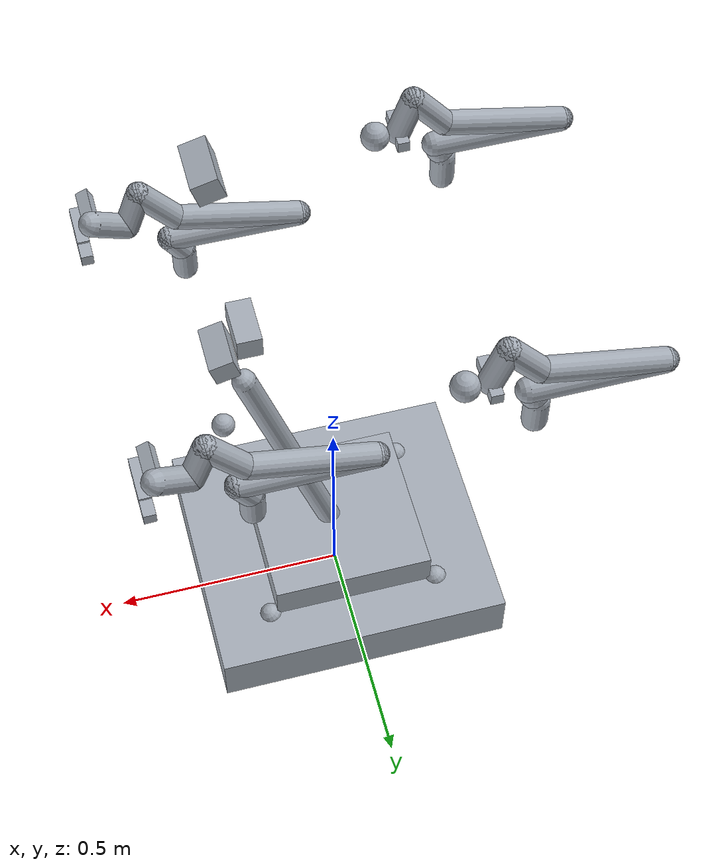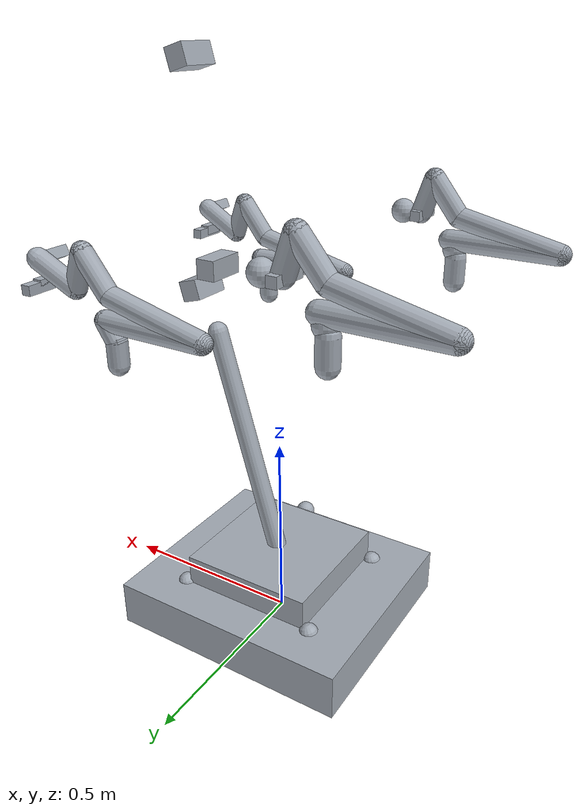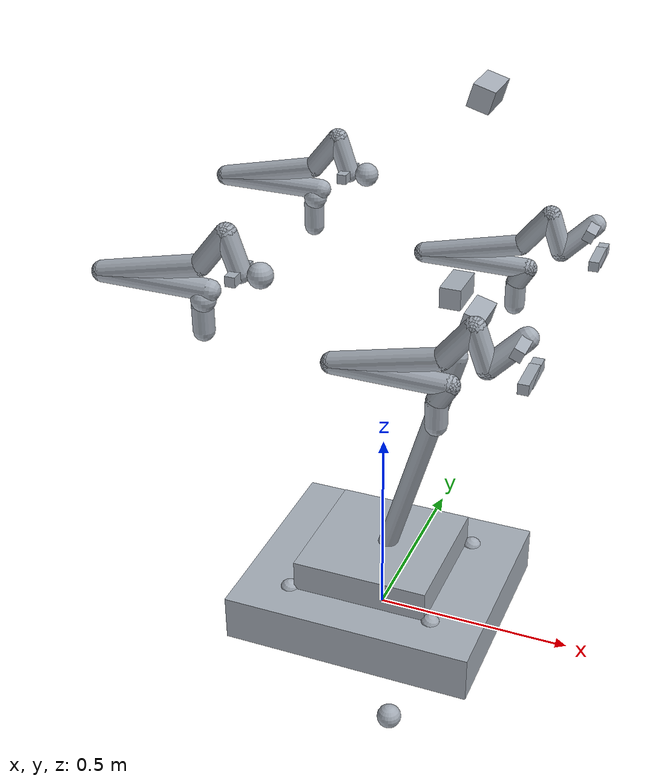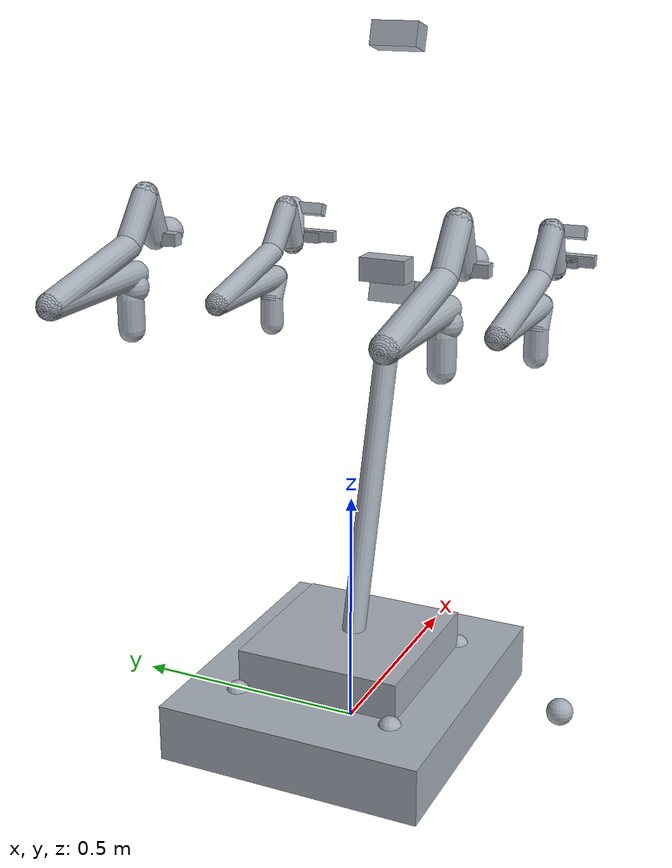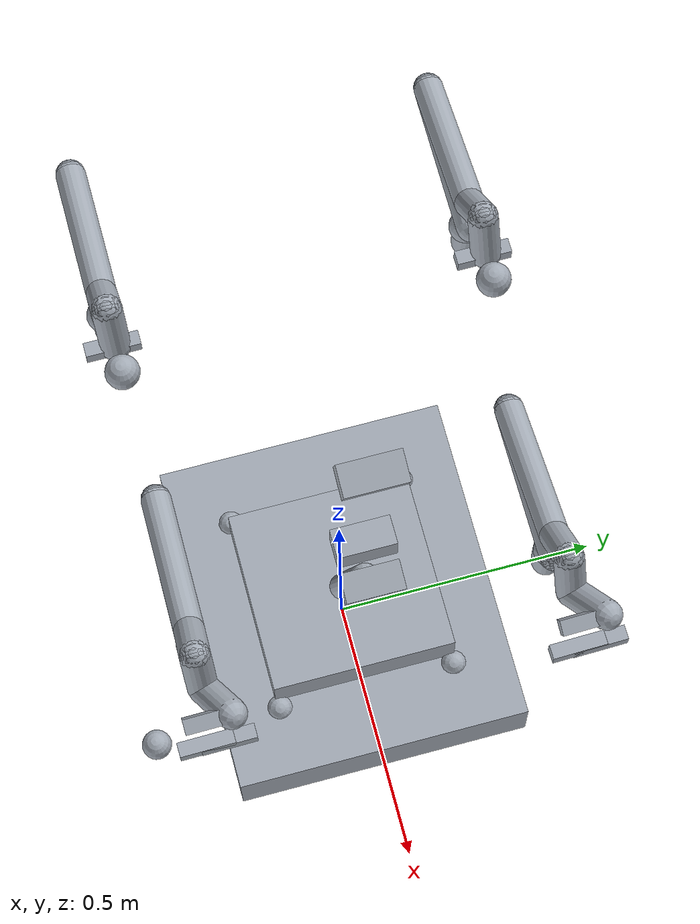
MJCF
<mujoco model="arx5_description_no_mesh">
  <!-- Mesh-free conversion of arx5_description_isaac.urdf; generated by convert_urdf_to_nomesh_mjcf.py. -->
  <compiler angle="radian" autolimits="true" balanceinertia="true" />
  <option integrator="implicitfast" cone="elliptic" impratio="10" />
  <default>
    <joint damping="0.1" armature="0.01" />
    <geom rgba="0.65 0.68 0.72 1" friction="0.8 0.1 0.1" condim="3" />
  </default>
  <worldbody>
    <light name="top" pos="0 0 2" mode="trackcom" />
    <body name="footprint">
      <geom type="box" size="0.32 0.28 0.06" pos="0 0 0.06" name="footprint_geom" />
      <body name="base_link" pos="0 0 0.15" quat="1 0 0 0">
        <geom type="box" size="0.175 0.05 0.175" pos="0 0 0" quat="0.707388269 0.706825181 0 0" name="base_link_geom" />
        <body name="inertial_link" pos="0 0 0" quat="1 0 0 0">
          <inertial pos="0.015 0.0231316650320557 0" quat="1 0 0 0" mass="132.389849" diaginertia="0.185196123 0.364893736 0.223868522" />
          <geom type="sphere" size="0.02875" pos="0.015 0.023131665 0" name="inertial_link_geom" />
        </body>
        <body name="right_wheel_link" pos="0 -0.17 -0.082" quat="1 0 0 0">
          <inertial pos="0 0 0" quat="1 0 0 0" mass="6" diaginertia="0.7171 0.1361 0.7171" />
          <joint name="right_wheel" type="hinge" axis="0 1 0" />
          <geom type="cylinder" size="0.05 0.025" pos="0 0 0" quat="0.707388269 0.706825181 0 0" name="right_wheel_link_geom" />
        </body>
        <body name="left_wheel_link" pos="0 0.17 -0.082" quat="1 0 0 0">
          <inertial pos="0 0 0" quat="1 0 0 0" mass="6" diaginertia="0.7171 0.1361 0.7171" />
          <joint name="left_wheel" type="hinge" axis="0 1 0" />
          <geom type="cylinder" size="0.05 0.025" pos="0 0 0" quat="0.707388269 0.706825181 0 0" name="left_wheel_link_geom" />
        </body>
        <body name="fl_castor_link" pos="0.19 0.17 -0.038" quat="0.707388269 -0.706825181 0 0">
          <inertial pos="0 0 0" quat="1 0 0 0" mass="1" diaginertia="0.7171 0.1361 0.7171" />
          <joint name="fl_castor_wheel" type="hinge" axis="0 1 0" />
          <geom type="capsule" size="0.025" fromto="0 0 0 -0.0218084 0.077 0" name="fl_castor_link_geom" />
          <body name="fl_wheel_link" pos="-0.0218084 0.077 0" quat="1 0 0 0">
            <inertial pos="0 0 0" quat="1 0 0 0" mass="1" diaginertia="0.3131 0.3131 0.1361" />
            <joint name="fl_wheel" type="hinge" axis="0 0 1" />
            <geom type="cylinder" size="0.025 0.0125" pos="0 0 0" quat="1 0 0 0" name="fl_wheel_link_geom" />
          </body>
        </body>
        <body name="fr_castor_link" pos="0.18955 -0.17 -0.0380886" quat="0.707388269 -0.706825181 0 0">
          <inertial pos="0 0 0" quat="1 0 0 0" mass="1" diaginertia="0.7171 0.1361 0.7171" />
          <joint name="fr_castor_wheel" type="hinge" axis="0 1 0" />
          <geom type="capsule" size="0.025" fromto="0 0 0 -0.0218084 0.077 0" name="fr_castor_link_geom" />
          <body name="fr_wheel_link" pos="-0.0218084 0.077 0" quat="1 0 0 0">
            <inertial pos="0 0 0" quat="1 0 0 0" mass="1" diaginertia="0.3131 0.3131 0.1361" />
            <joint name="fr_wheel" type="hinge" axis="0 0 1" />
            <geom type="cylinder" size="0.025 0.0125" pos="0 0 0" quat="1 0 0 0" name="fr_wheel_link_geom" />
          </body>
        </body>
        <body name="rr_castor_link" pos="-0.18955 -0.17 -0.0380886" quat="0.707388269 -0.706825181 0 0">
          <inertial pos="0 0 0" quat="1 0 0 0" mass="1" diaginertia="0.7171 0.1361 0.7171" />
          <joint name="rr_castor_wheel" type="hinge" axis="0 1 0" />
          <geom type="capsule" size="0.025" fromto="0 0 0 -0.0218084 0.077 0" name="rr_castor_link_geom" />
          <body name="rr_wheel_link" pos="-0.0218084 0.077 0" quat="1 0 0 0">
            <inertial pos="0 0 0" quat="1 0 0 0" mass="1" diaginertia="0.3131 0.3131 0.1361" />
            <joint name="rr_wheel" type="hinge" axis="0 0 1" />
            <geom type="cylinder" size="0.025 0.0125" pos="0 0 0" quat="1 0 0 0" name="rr_wheel_link_geom" />
          </body>
        </body>
        <body name="rl_castor_link" pos="-0.18955 0.17 -0.0380886" quat="0.707388269 -0.706825181 0 0">
          <inertial pos="0 0 0" quat="1 0 0 0" mass="1" diaginertia="0.7171 0.1361 0.7171" />
          <joint name="rl_castor_wheel" type="hinge" axis="0 1 0" />
          <geom type="capsule" size="0.025" fromto="0 0 0 -0.0218084 0.077 0" name="rl_castor_link_geom" />
          <body name="rl_wheel_link" pos="-0.0218084 0.077 0" quat="1 0 0 0">
            <inertial pos="0 0 0" quat="1 0 0 0" mass="1" diaginertia="0.3131 0.3131 0.1361" />
            <joint name="rl_wheel" type="hinge" axis="0 0 1" />
            <geom type="cylinder" size="0.025 0.0125" pos="0 0 0" quat="1 0 0 0" name="rl_wheel_link_geom" />
          </body>
        </body>
      </body>
      <body name="box1_Link" pos="0 0 0.15" quat="1 0 0 0">
        <inertial pos="-0.17227 -0.0012276 0.023432" quat="1 0 0 0" mass="0.00014994" diaginertia="0.012264 0.0045226 0.016558" />
        <geom type="capsule" size="0.025" fromto="0 0 0 0.18 0 0.626" name="box1_Link_geom" />
        <body name="box2_Link" pos="0.158 -0.385 -0.135" quat="1 0 0 0">
          <inertial pos="0.015107 -0.027922 0.00013672" quat="1 0 0 0" mass="3.736" diaginertia="0.097545 0.045841 0.084773" />
          <geom type="sphere" size="0.02875" pos="0.015107 -0.027922 0.00013672" name="box2_Link_geom" />
        </body>
        <body name="camera_base_link" pos="0.18 0 0.626" quat="1 0 0 0">
          <inertial pos="-0.00862442289199344 -5.31672329634469E-08 0.170092831004467" quat="1 0 0 0" mass="0.336269569" diaginertia="0.00580628297 0.00582602201 0.000186894283" />
          <geom type="box" size="0.025 0.05 0.025" pos="-0.00862442289 -5.3167233e-08 0.170092831" name="camera_base_link_geom" />
          <body name="camera_link1" pos="0.071198 0 0.10384" quat="0.990947706 0 0.134248442 0">
            <inertial pos="-0.0292387906463559 0.000126439620513119 -0.000724950892729725" quat="1 0 0 0" mass="0.0877001598" diaginertia="7.77343249e-05 9.73521514e-06 7.74948757e-05" />
            <geom type="box" size="0.025 0.05 0.025" pos="-0.0292387906 0.000126439621 -0.000724950893" name="camera_link1_geom" />
            <body name="camera_link2" pos="-0.14 0 0.5" quat="0.999983875 0 0.00567896947 0">
              <inertial pos="-0.0292307474530399 0.000126438461566014 -0.000753459207498031" quat="1 0 0 0" mass="0.0877001605" diaginertia="7.77338962e-05 9.73521617e-06 7.74953085e-05" />
              <geom type="box" size="0.025 0.05 0.025" pos="-0.0292307475 0.000126438462 -0.000753459207" name="camera_link2_geom" />
            </body>
          </body>
        </body>
      </body>
      <body name="fl_base_link" pos="0.2305 0.297 0.782" quat="0.99995 0 0 0.00999983333">
        <inertial pos="-3.77960552443097E-05 6.79413834922362E-05 0.0272675975957773" quat="1 0 0 0" mass="0.155112527" diaginertia="7.60347374e-05 7.6417639e-05 6.94914158e-05" />
        <geom type="capsule" size="0.025" fromto="0 0 0 0 0 0.058" name="fl_base_link_geom" />
        <body name="fl_link1" pos="0 0 0.058" quat="1 0 0 0">
          <inertial pos="0.00625345254733769 -0.024776724575416 0.0152204909116542" quat="1 0 0 0" mass="0.0216291264" diaginertia="1.15756471e-05 9.5460586e-06 1.06781021e-05" />
          <joint name="fl_joint1" type="hinge" axis="0 0 1" range="-10 10" />
          <geom type="capsule" size="0.025" fromto="0 0 0 0.025013 0.00060169 0.042" name="fl_link1_geom" />
          <body name="fl_link2" pos="0.025013 0.00060169 0.042" quat="1 0 0 0">
            <inertial pos="-0.0751817740450955 3.45134309138919E-06 -4.55690287344823E-05" quat="1 0 0 0" mass="0.317040634" diaginertia="0.000148622979 0.000646291918 0.000613128042" />
            <joint name="fl_joint2" type="hinge" axis="0 1 0" range="-10 10" />
            <geom type="capsule" size="0.025" fromto="0 0 0 -0.26396 0.0044548 0" name="fl_link2_geom" />
            <body name="fl_link3" pos="-0.26396 0.0044548 0" quat="-3.67308862e-06 -0.999968288 0.00796391581 2.92530962e-08">
              <inertial pos="0.0958977122336034 -8.54798924280289E-05 -0.0389029227802006" quat="1 0 0 0" mass="0.475179901" diaginertia="0.000245797731 0.000848596966 0.000732908486" />
              <joint name="fl_joint3" type="hinge" axis="0 1 0" range="-10 10" />
              <geom type="capsule" size="0.025" fromto="0 0 0 0.246 -0.00025 -0.06" name="fl_link3_geom" />
              <body name="fl_link4" pos="0.246 -0.00025 -0.06" quat="1 0 0 0">
                <inertial pos="0.0591385266744759 0.00278044811499105 -0.0552291926495377" quat="1 0 0 0" mass="0.138133634" diaginertia="5.68129318e-05 5.56751697e-05 6.42957251e-05" />
                <joint name="fl_joint4" type="hinge" axis="0 1 0" range="-10 10" />
                <geom type="capsule" size="0.025" fromto="0 0 0 0.06775 0.0015 -0.0855" name="fl_link4_geom" />
                <body name="fl_link5" pos="0.06775 0.0015 -0.0855" quat="0.999968288 0 0 -0.00796391581">
                  <inertial pos="0.00870303426445659 -2.87406901246252E-05 0.0817957433312705" quat="1 0 0 0" mass="0.126741778" diaginertia="5.28702264e-05 4.14245047e-05 4.4626556e-05" />
                  <joint name="fl_joint5" type="hinge" axis="0 0 1" range="-10 10" />
                  <geom type="capsule" size="0.025" fromto="0 0 0 0.03095 0 0.0855" name="fl_link5_geom" />
                  <body name="fl_link6" pos="0.03095 0 0.0855" quat="-3.6732051e-06 -1 -0 0">
                    <inertial pos="0.038317562848284 -4.45000434657139E-05 0.00355875192843721" quat="1 0 0 0" mass="0.142880101" diaginertia="9.84190386e-05 3.95328646e-05 8.47115626e-05" />
                    <joint name="fl_joint6" type="hinge" axis="1 0 0" range="-10 10" />
                    <geom type="capsule" size="0.025" fromto="0 0 0 0.07 0.032 0.065" name="fl_link6_geom" />
                    <body name="fl_gripper_center" pos="0.08457 -1.5e-06 -0.000103515" quat="6.27473282e-06 0.707539403 -6.26705715e-06 0.706673894">
                      <site name="fl_gripper_center" type="sphere" size="0.005" group="5" rgba="0.9 0.9 0.9 1" />
                    </body>
                    <body name="left_camera" pos="0.07 0.032 0.065" quat="0.980066578 0 0.198669331 0">
                      <inertial pos="0 0 0" quat="1 0 0 0" mass="0.1" diaginertia="0.001 0.001 0.001" />
                      <geom type="box" size="0.0125 0.045 0.0125" pos="0 -0.032 0" quat="1 0 0 0" name="left_camera_geom" />
                    </body>
                    <body name="fl_link7" pos="0.08457 0.024493 -0.00010349" quat="1 0 0 0">
                      <inertial pos="0.00626222055030923 -0.00713411663149576 -0.00289898514345116" quat="1 0 0 0" mass="0.0264779586" diaginertia="8.79642527e-06 1.48519274e-05 1.11141426e-05" />
                      <joint name="fl_joint7" type="slide" axis="0 1 0" range="0 0.04765" />
                      <geom type="box" size="0.012 0.045 0.012" pos="0.00626222055 -0.00713411663 -0.00289898514" name="fl_link7_geom" />
                    </body>
                    <body name="fl_link8" pos="0.08457 -0.024496 -0.00010354" quat="1 0 0 0">
                      <inertial pos="0.00626222057480438 0.00713411644936678 0.00145300478837504" quat="1 0 0 0" mass="0.0264779581" diaginertia="9.01311523e-06 1.50686174e-05 1.11141426e-05" />
                      <joint name="fl_joint8" type="slide" axis="0 -1 0" range="0 0.04765" />
                      <geom type="box" size="0.012 0.045 0.012" pos="0.00626222057 0.00713411645 0.00145300479" name="fl_link8_geom" />
                    </body>
                  </body>
                </body>
              </body>
            </body>
          </body>
        </body>
      </body>
      <body name="fr_base_link" pos="0.2315 -0.3063 0.781" quat="0.9999875 0 0 0.00499997917">
        <inertial pos="-3.77960552443097E-05 6.79413834922362E-05 0.0272675975957773" quat="1 0 0 0" mass="0.155112527" diaginertia="7.60347374e-05 7.6417639e-05 6.94914158e-05" />
        <geom type="capsule" size="0.025" fromto="0 0 0 0 0 0.058" name="fr_base_link_geom" />
        <body name="fr_link1" pos="0 0 0.058" quat="1 0 0 0">
          <inertial pos="0.00625345254733769 -0.024776724575416 0.0152204909116542" quat="1 0 0 0" mass="0.0216291264" diaginertia="1.15756471e-05 9.5460586e-06 1.06781021e-05" />
          <joint name="fr_joint1" type="hinge" axis="0 0 1" range="-10 10" />
          <geom type="capsule" size="0.025" fromto="0 0 0 0.025013 0.00060169 0.042" name="fr_link1_geom" />
          <body name="fr_link2" pos="0.025013 0.00060169 0.042" quat="1 0 0 0">
            <inertial pos="-0.0751817740450955 3.45134309138919E-06 -4.55690287344823E-05" quat="1 0 0 0" mass="0.317040634" diaginertia="0.000148622979 0.000646291918 0.000613128042" />
            <joint name="fr_joint2" type="hinge" axis="0 1 0" range="-10 10" />
            <geom type="capsule" size="0.025" fromto="0 0 0 -0.26396 0.0044548 0" name="fr_link2_geom" />
            <body name="fr_link3" pos="-0.26396 0.0044548 0" quat="-3.67308862e-06 -0.999968288 0.00796391581 2.92530962e-08">
              <inertial pos="0.0958977122336034 -8.54798924280289E-05 -0.0389029227802006" quat="1 0 0 0" mass="0.475179901" diaginertia="0.000245797731 0.000848596966 0.000732908486" />
              <joint name="fr_joint3" type="hinge" axis="0 1 0" range="-10 10" />
              <geom type="capsule" size="0.025" fromto="0 0 0 0.246 -0.00025 -0.06" name="fr_link3_geom" />
              <body name="fr_link4" pos="0.246 -0.00025 -0.06" quat="1 0 0 0">
                <inertial pos="0.0591385266744759 0.00278044811499105 -0.0552291926495377" quat="1 0 0 0" mass="0.138133634" diaginertia="5.68129318e-05 5.56751697e-05 6.42957251e-05" />
                <joint name="fr_joint4" type="hinge" axis="0 1 0" range="-10 10" />
                <geom type="capsule" size="0.025" fromto="0 0 0 0.06775 0.0015 -0.0855" name="fr_link4_geom" />
                <body name="fr_link5" pos="0.06775 0.0015 -0.0855" quat="0.999968288 0 0 -0.00796391581">
                  <inertial pos="0.00870303426445659 -2.87406901246252E-05 0.0817957433312705" quat="1 0 0 0" mass="0.126741778" diaginertia="5.28702264e-05 4.14245047e-05 4.4626556e-05" />
                  <joint name="fr_joint5" type="hinge" axis="0 0 1" range="-10 10" />
                  <geom type="capsule" size="0.025" fromto="0 0 0 0.03095 0 0.0855" name="fr_link5_geom" />
                  <body name="fr_link6" pos="0.03095 0 0.0855" quat="-3.6732051e-06 -1 -0 0">
                    <inertial pos="0.038317562848284 -4.45000434657139E-05 0.00355875192843721" quat="1 0 0 0" mass="0.142880101" diaginertia="9.84190386e-05 3.95328646e-05 8.47115626e-05" />
                    <joint name="fr_joint6" type="hinge" axis="1 0 0" range="-10 10" />
                    <geom type="capsule" size="0.025" fromto="0 0 0 0.07 0.032 0.065" name="fr_link6_geom" />
                    <body name="fr_gripper_center" pos="0.08457 -1.5e-06 -0.000103515" quat="6.27473282e-06 0.707539403 -6.26705715e-06 0.706673894">
                      <site name="fr_gripper_center" type="sphere" size="0.005" group="5" rgba="0.9 0.9 0.9 1" />
                    </body>
                    <body name="right_camera" pos="0.07 0.032 0.065" quat="0.980066578 0 0.198669331 0">
                      <inertial pos="0 0 0" quat="1 0 0 0" mass="0.1" diaginertia="0.001 0.001 0.001" />
                      <geom type="box" size="0.0125 0.045 0.0125" pos="0 -0.032 0" quat="1 0 0 0" name="right_camera_geom" />
                    </body>
                    <body name="fr_link7" pos="0.08457 0.024493 -0.00010349" quat="1 0 0 0">
                      <inertial pos="0.00626222055030923 -0.00713411663149576 -0.00289898514345116" quat="1 0 0 0" mass="0.0264779586" diaginertia="8.79642527e-06 1.48519274e-05 1.11141426e-05" />
                      <joint name="fr_joint7" type="slide" axis="0 1 0" range="0 0.04765" />
                      <geom type="box" size="0.012 0.045 0.012" pos="0.00626222055 -0.00713411663 -0.00289898514" name="fr_link7_geom" />
                    </body>
                    <body name="fr_link8" pos="0.08457 -0.024496 -0.00010354" quat="1 0 0 0">
                      <inertial pos="0.00626222057480438 0.00713411644936678 0.00145300478837504" quat="1 0 0 0" mass="0.0264779581" diaginertia="9.01311523e-06 1.50686174e-05 1.11141426e-05" />
                      <joint name="fr_joint8" type="slide" axis="0 -1 0" range="0 0.04765" />
                      <geom type="box" size="0.012 0.045 0.012" pos="0.00626222057 0.00713411645 0.00145300479" name="fr_link8_geom" />
                    </body>
                  </body>
                </body>
              </body>
            </body>
          </body>
        </body>
      </body>
      <body name="lr_base_link" pos="-0.309 0.307 0.903" quat="1 0 0 0">
        <inertial pos="-2.9972E-05 3.056E-05 0.027301" quat="1 0 0 0" mass="0.44038" diaginertia="0.00017 0.00018 0.00016" />
        <geom type="capsule" size="0.025" fromto="0 0 0 0 0 0.0603" name="lr_base_link_geom" />
        <body name="lr_link1" pos="0 0 0.0603" quat="1 0 0 0">
          <inertial pos="0.00609525411893452 -0.00429681977500749 0.0179590247477389" quat="1 0 0 0" mass="0.0608351105" diaginertia="8e-05 3e-05 7e-05" />
          <joint name="lr_joint1" type="hinge" axis="0 0 1" range="-10 10" />
          <geom type="sphere" size="0.02875" pos="0.00609525412 -0.00429681978 0.0179590247" name="lr_link1_geom" />
          <body name="lr_link2" pos="0.02 0 0.0402" quat="1 0 0 0">
            <inertial pos="-0.132382037190567 0.00220380675553821 0.000111790164679923" quat="1 0 0 0" mass="1.0733279" diaginertia="0.0005 0.01596 0.01602" />
            <joint name="lr_joint2" type="hinge" axis="0 1 0" range="-10 10" />
            <geom type="capsule" size="0.025" fromto="0 0 0 -0.264 0 0" name="lr_link2_geom" />
            <body name="lr_link3" pos="-0.264 0 0" quat="-3.6732051e-06 -1 -0 0">
              <inertial pos="0.187203287369961 -0.000305676361444925 -0.0514832866415513" quat="1 0 0 0" mass="0.499404738" diaginertia="0.00033 0.00387 0.00383" />
              <joint name="lr_joint3" type="hinge" axis="0 1 0" range="-10 10" />
              <geom type="capsule" size="0.025" fromto="0 0 0 0.245 0 -0.056" name="lr_link3_geom" />
              <body name="lr_link4" pos="0.245 0 -0.056" quat="1 0 0 0">
                <inertial pos="0.0388884702662706 0.00295168681334743 -0.0353282735009622" quat="1 0 0 0" mass="0.0809712553" diaginertia="0.00013 0.00016 0.0001" />
                <joint name="lr_joint4" type="hinge" axis="0 1 0" range="-10 10" />
                <geom type="capsule" size="0.025" fromto="0 0 0 0.06575 -0.001 -0.0825" name="lr_link4_geom" />
                <body name="lr_link5" pos="0.06575 -0.001 -0.0825" quat="1 0 0 0">
                  <inertial pos="0.00289956909960302 3.15826689885766E-05 0.0526188859211408" quat="1 0 0 0" mass="0.602357399" diaginertia="0.00072 0.00069 0.00021" />
                  <joint name="lr_joint5" type="hinge" axis="0 0 1" range="-10 10" />
                  <geom type="capsule" size="0.025" fromto="0 0 0 0.02845 0 0.0825" name="lr_link5_geom" />
                  <body name="lr_link6" pos="0.02845 0 0.0825" quat="-3.6732051e-06 -1 -0 0">
                    <inertial pos="0.0471798400661976 0.000102970421835668 -0.000138510949393961" quat="1 0 0 0" mass="0.462244961" diaginertia="0.00068 0.00036 0.00091" />
                    <joint name="lr_joint6" type="hinge" axis="1 0 0" range="-10 10" />
                    <geom type="sphere" size="0.02875" pos="0.0471798401 0.000102970422 -0.000138510949" name="lr_link6_geom" />
                    <body name="lr_link7" pos="0 0 0" quat="1 0 0 0">
                      <inertial pos="-0.000327642774520215 -0.00482005374028087 -0.00167540868720402" quat="1 0 0 0" mass="0.048401666" diaginertia="1e-05 2e-05 2e-05" />
                      <geom type="box" size="0.012 0.045 0.012" pos="-0.000327642775 -0.00482005374 -0.00167540869" name="lr_link7_geom" />
                    </body>
                  </body>
                </body>
              </body>
            </body>
          </body>
        </body>
      </body>
      <body name="rr_base_link" pos="-0.309 -0.307 0.903" quat="1 0 0 0">
        <inertial pos="-2.9972E-05 3.056E-05 0.027301" quat="1 0 0 0" mass="0.44038" diaginertia="0.00017 0.00018 0.00016" />
        <geom type="capsule" size="0.025" fromto="0 0 0 0 0 0.0603" name="rr_base_link_geom" />
        <body name="rr_link1" pos="0 0 0.0603" quat="1 0 0 0">
          <inertial pos="0.00609525411893452 -0.00429681977500749 0.0179590247477389" quat="1 0 0 0" mass="0.0608351105" diaginertia="8e-05 3e-05 7e-05" />
          <joint name="rr_joint1" type="hinge" axis="0 0 1" range="-10 10" />
          <geom type="sphere" size="0.02875" pos="0.00609525412 -0.00429681978 0.0179590247" name="rr_link1_geom" />
          <body name="rr_link2" pos="0.02 0 0.0402" quat="1 0 0 0">
            <inertial pos="-0.132382037190567 0.00220380675553821 0.000111790164679923" quat="1 0 0 0" mass="1.0733279" diaginertia="0.0005 0.01596 0.01602" />
            <joint name="rr_joint2" type="hinge" axis="0 1 0" range="-10 10" />
            <geom type="capsule" size="0.025" fromto="0 0 0 -0.264 0 0" name="rr_link2_geom" />
            <body name="rr_link3" pos="-0.264 0 0" quat="-3.6732051e-06 -1 -0 0">
              <inertial pos="0.187203287369961 -0.000305676361444925 -0.0514832866415513" quat="1 0 0 0" mass="0.499404738" diaginertia="0.00033 0.00387 0.00383" />
              <joint name="rr_joint3" type="hinge" axis="0 1 0" range="-10 10" />
              <geom type="capsule" size="0.025" fromto="0 0 0 0.245 0 -0.056" name="rr_link3_geom" />
              <body name="rr_link4" pos="0.245 0 -0.056" quat="1 0 0 0">
                <inertial pos="0.0388884702662706 0.00295168681334743 -0.0353282735009622" quat="1 0 0 0" mass="0.0809712553" diaginertia="0.00013 0.00016 0.0001" />
                <joint name="rr_joint4" type="hinge" axis="0 1 0" range="-10 10" />
                <geom type="capsule" size="0.025" fromto="0 0 0 0.06575 -0.001 -0.0825" name="rr_link4_geom" />
                <body name="rr_link5" pos="0.06575 -0.001 -0.0825" quat="1 0 0 0">
                  <inertial pos="0.00289956909960302 3.15826689885766E-05 0.0526188859211408" quat="1 0 0 0" mass="0.602357399" diaginertia="0.00072 0.00069 0.00021" />
                  <joint name="rr_joint5" type="hinge" axis="0 0 1" range="-10 10" />
                  <geom type="capsule" size="0.025" fromto="0 0 0 0.02845 0 0.0825" name="rr_link5_geom" />
                  <body name="rr_link6" pos="0.02845 0 0.0825" quat="-3.6732051e-06 -1 -0 0">
                    <inertial pos="0.0471798400661976 0.000102970421835668 -0.000138510949393961" quat="1 0 0 0" mass="0.462244961" diaginertia="0.00068 0.00036 0.00091" />
                    <joint name="rr_joint6" type="hinge" axis="1 0 0" range="-10 10" />
                    <geom type="sphere" size="0.02875" pos="0.0471798401 0.000102970422 -0.000138510949" name="rr_link6_geom" />
                    <body name="rr_link7" pos="0 0 0" quat="1 0 0 0">
                      <inertial pos="-0.000327642774520215 -0.00482005374028087 -0.00167540868720402" quat="1 0 0 0" mass="0.048401666" diaginertia="1e-05 2e-05 2e-05" />
                      <geom type="box" size="0.012 0.045 0.012" pos="-0.000327642775 -0.00482005374 -0.00167540869" name="rr_link7_geom" />
                    </body>
                  </body>
                </body>
              </body>
            </body>
          </body>
        </body>
      </body>
    </body>
  </worldbody>
  <actuator>
    <position name="right_wheel_actuator" joint="right_wheel" kp="200" forcerange="-100 100" />
    <position name="left_wheel_actuator" joint="left_wheel" kp="200" forcerange="-100 100" />
    <position name="fl_castor_wheel_actuator" joint="fl_castor_wheel" kp="200" forcerange="-100 100" />
    <position name="fl_wheel_actuator" joint="fl_wheel" kp="200" forcerange="-100 100" />
    <position name="fr_castor_wheel_actuator" joint="fr_castor_wheel" kp="200" forcerange="-100 100" />
    <position name="fr_wheel_actuator" joint="fr_wheel" kp="200" forcerange="-100 100" />
    <position name="rr_castor_wheel_actuator" joint="rr_castor_wheel" kp="200" forcerange="-100 100" />
    <position name="rr_wheel_actuator" joint="rr_wheel" kp="200" forcerange="-100 100" />
    <position name="rl_castor_wheel_actuator" joint="rl_castor_wheel" kp="200" forcerange="-100 100" />
    <position name="rl_wheel_actuator" joint="rl_wheel" kp="200" forcerange="-100 100" />
    <position name="fl_joint1_actuator" joint="fl_joint1" kp="200" forcerange="-100 100" ctrlrange="-10 10" />
    <position name="fl_joint2_actuator" joint="fl_joint2" kp="200" forcerange="-100 100" ctrlrange="-10 10" />
    <position name="fl_joint3_actuator" joint="fl_joint3" kp="200" forcerange="-100 100" ctrlrange="-10 10" />
    <position name="fl_joint4_actuator" joint="fl_joint4" kp="200" forcerange="-100 100" ctrlrange="-10 10" />
    <position name="fl_joint5_actuator" joint="fl_joint5" kp="200" forcerange="-100 100" ctrlrange="-10 10" />
    <position name="fl_joint6_actuator" joint="fl_joint6" kp="200" forcerange="-100 100" ctrlrange="-10 10" />
    <position name="fl_joint7_actuator" joint="fl_joint7" kp="1000" forcerange="-100 100" ctrlrange="0 0.04765" />
    <position name="fl_joint8_actuator" joint="fl_joint8" kp="1000" forcerange="-100 100" ctrlrange="0 0.04765" />
    <position name="fr_joint1_actuator" joint="fr_joint1" kp="200" forcerange="-100 100" ctrlrange="-10 10" />
    <position name="fr_joint2_actuator" joint="fr_joint2" kp="200" forcerange="-100 100" ctrlrange="-10 10" />
    <position name="fr_joint3_actuator" joint="fr_joint3" kp="200" forcerange="-100 100" ctrlrange="-10 10" />
    <position name="fr_joint4_actuator" joint="fr_joint4" kp="200" forcerange="-100 100" ctrlrange="-10 10" />
    <position name="fr_joint5_actuator" joint="fr_joint5" kp="200" forcerange="-100 100" ctrlrange="-10 10" />
    <position name="fr_joint6_actuator" joint="fr_joint6" kp="200" forcerange="-100 100" ctrlrange="-10 10" />
    <position name="fr_joint7_actuator" joint="fr_joint7" kp="1000" forcerange="-100 100" ctrlrange="0 0.04765" />
    <position name="fr_joint8_actuator" joint="fr_joint8" kp="1000" forcerange="-100 100" ctrlrange="0 0.04765" />
    <position name="lr_joint1_actuator" joint="lr_joint1" kp="200" forcerange="-100 100" ctrlrange="-10 10" />
    <position name="lr_joint2_actuator" joint="lr_joint2" kp="200" forcerange="-100 100" ctrlrange="-10 10" />
    <position name="lr_joint3_actuator" joint="lr_joint3" kp="200" forcerange="-100 100" ctrlrange="-10 10" />
    <position name="lr_joint4_actuator" joint="lr_joint4" kp="200" forcerange="-100 100" ctrlrange="-10 10" />
    <position name="lr_joint5_actuator" joint="lr_joint5" kp="200" forcerange="-100 100" ctrlrange="-10 10" />
    <position name="lr_joint6_actuator" joint="lr_joint6" kp="200" forcerange="-100 100" ctrlrange="-10 10" />
    <position name="rr_joint1_actuator" joint="rr_joint1" kp="200" forcerange="-100 100" ctrlrange="-10 10" />
    <position name="rr_joint2_actuator" joint="rr_joint2" kp="200" forcerange="-100 100" ctrlrange="-10 10" />
    <position name="rr_joint3_actuator" joint="rr_joint3" kp="200" forcerange="-100 100" ctrlrange="-10 10" />
    <position name="rr_joint4_actuator" joint="rr_joint4" kp="200" forcerange="-100 100" ctrlrange="-10 10" />
    <position name="rr_joint5_actuator" joint="rr_joint5" kp="200" forcerange="-100 100" ctrlrange="-10 10" />
    <position name="rr_joint6_actuator" joint="rr_joint6" kp="200" forcerange="-100 100" ctrlrange="-10 10" />
  </actuator>
</mujoco>
